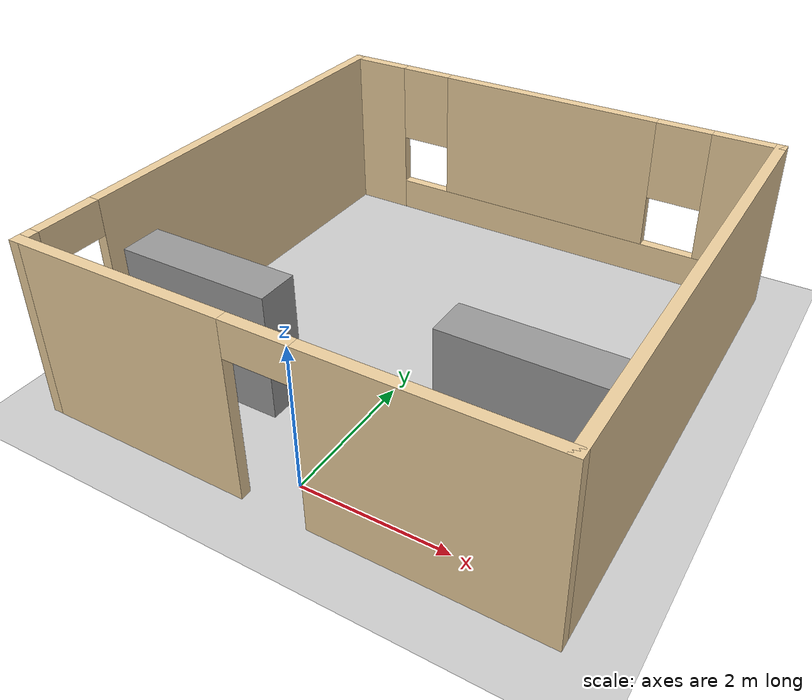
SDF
<sdf version="1.4">
 <world name="labme_world">
  <include><uri>model://ground_plane</uri></include>
  <include><uri>model://sun</uri></include>
  <include><uri>model://labmeLayout</uri><name>walls</name></include>
  <model name="wardrobe_1">
   <pose>-2.1 1.1 0.89 0 0 0</pose>
   <link name="wardrobe">
    <visual name="wardrobe_1_Visual">
     <geometry><box><size>2.2 0.59 1.8</size></box></geometry>
     <material>
      <script><uri>file://media/materials/scripts/gazebo.material</uri><name>Gazebo/Grey</name></script>
     </material>
    </visual>
    <collision name="wardrobe_1_Collision"><geometry><box><size>2.2 0.59 1.8</size></box></geometry></collision>
   </link>
  </model>
  <model name="wardrobe_2">
   <pose>2.1 1.6 0.89 0 0 0</pose>
   <link name="wardrobe2">
    <visual name="wardrobe_2_Visual">
     <geometry><box><size>2.2 0.59 1.8</size></box></geometry>
     <material>
      <script><uri>file://media/materials/scripts/gazebo.material</uri><name>Gazebo/Grey</name></script>
     </material>
    </visual>
    <collision name="wardrobe_2_Collision"><geometry><box><size>2.2 0.59 1.8</size></box></geometry></collision>
   </link>
  </model>
  <scene><grid>1</grid><origin_visual>0</origin_visual></scene>
 </world>
</sdf>

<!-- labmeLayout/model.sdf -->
<sdf version='1.6'>
  <model name='Untitled'>
    <pose frame=''>0 3.0 0 0 0 0</pose>
    <link name='Wall_4'>
      <pose frame=''>-3.425 -0 0 0 -0 1.5708</pose>
      <visual name='Wall_4_Visual_0'>
        <pose frame=''>-3.35343 0 1.25 0 -0 0</pose>
        <geometry>
          <box>
            <size>0.293141 0.15 2.5</size>
          </box>
        </geometry>
        <material>
          <script>
            <uri>file://media/materials/scripts/gazebo.material</uri>
            <name>Gazebo/Grey</name>
          </script>
          <ambient>0.921569 0.807843 0.615686 1</ambient>
        </material>
        <meta>
          <layer>0</layer>
        </meta>
      </visual>
      <collision name='Wall_4_Collision_0'>
        <geometry>
          <box>
            <size>0.293141 0.15 2.5</size>
          </box>
        </geometry>
        <pose frame=''>-3.35343 0 1.25 0 -0 0</pose>
      </collision>
      <visual name='Wall_4_Visual_1'>
        <pose frame=''>0.596571 0 1.25 0 -0 0</pose>
        <geometry>
          <box>
            <size>5.80686 0.15 2.5</size>
          </box>
        </geometry>
        <material>
          <script>
            <uri>file://media/materials/scripts/gazebo.material</uri>
            <name>Gazebo/Grey</name>
          </script>
          <ambient>0.921569 0.807843 0.615686 1</ambient>
        </material>
        <meta>
          <layer>0</layer>
        </meta>
      </visual>
      <collision name='Wall_4_Collision_1'>
        <geometry>
          <box>
            <size>5.80686 0.15 2.5</size>
          </box>
        </geometry>
        <pose frame=''>0.596571 0 1.25 0 -0 0</pose>
      </collision>
      <visual name='Wall_4_Visual_2'>
        <pose frame=''>-2.75686 0 2.25 0 -0 0</pose>
        <geometry>
          <box>
            <size>0.9 0.15 0.5</size>
          </box>
        </geometry>
        <material>
          <script>
            <uri>file://media/materials/scripts/gazebo.material</uri>
            <name>Gazebo/Grey</name>
          </script>
          <ambient>0.921569 0.807843 0.615686 1</ambient>
        </material>
        <meta>
          <layer>0</layer>
        </meta>
      </visual>
      <collision name='Wall_4_Collision_2'>
        <geometry>
          <box>
            <size>0.9 0.15 0.5</size>
          </box>
        </geometry>
        <pose frame=''>-2.75686 0 2.25 0 -0 0</pose>
      </collision>
    </link>
    <link name='Wall_6'>
      <pose frame=''>0 3.425 0 0 -0 0</pose>
      <visual name='Wall_6_Visual_0'>
        <pose frame=''>-3.00001 0 1.25 0 -0 0</pose>
        <geometry>
          <box>
            <size>0.999987 0.15 2.5</size>
          </box>
        </geometry>
        <material>
          <script>
            <uri>file://media/materials/scripts/gazebo.material</uri>
            <name>Gazebo/Grey</name>
          </script>
          <ambient>0.921569 0.807843 0.615686 1</ambient>
        </material>
        <meta>
          <layer>0</layer>
        </meta>
      </visual>
      <collision name='Wall_6_Collision_0'>
        <geometry>
          <box>
            <size>0.999987 0.15 2.5</size>
          </box>
        </geometry>
        <pose frame=''>-3.00001 0 1.25 0 -0 0</pose>
      </collision>
      <visual name='Wall_6_Visual_1'>
        <pose frame=''>0.499993 0 0.25 0 -0 0</pose>
        <geometry>
          <box>
            <size>6.00001 0.15 0.5</size>
          </box>
        </geometry>
        <material>
          <script>
            <uri>file://media/materials/scripts/gazebo.material</uri>
            <name>Gazebo/Grey</name>
          </script>
          <ambient>0.921569 0.807843 0.615686 1</ambient>
        </material>
        <meta>
          <layer>0</layer>
        </meta>
      </visual>
      <collision name='Wall_6_Collision_1'>
        <geometry>
          <box>
            <size>6.00001 0.15 0.5</size>
          </box>
        </geometry>
        <pose frame=''>0.499993 0 0.25 0 -0 0</pose>
      </collision>
      <visual name='Wall_6_Visual_2'>
        <pose frame=''>-1.3e-05 0 1.5 0 -0 0</pose>
        <geometry>
          <box>
            <size>3.4 0.15 2</size>
          </box>
        </geometry>
        <material>
          <script>
            <uri>file://media/materials/scripts/gazebo.material</uri>
            <name>Gazebo/Grey</name>
          </script>
          <ambient>0.921569 0.807843 0.615686 1</ambient>
        </material>
        <meta>
          <layer>0</layer>
        </meta>
      </visual>
      <collision name='Wall_6_Collision_2'>
        <geometry>
          <box>
            <size>3.4 0.15 2</size>
          </box>
        </geometry>
        <pose frame=''>-1.3e-05 0 1.5 0 -0 0</pose>
      </collision>
      <visual name='Wall_6_Visual_3'>
        <pose frame=''>2.99999 0 1.5 0 -0 0</pose>
        <geometry>
          <box>
            <size>1.00001 0.15 2</size>
          </box>
        </geometry>
        <material>
          <script>
            <uri>file://media/materials/scripts/gazebo.material</uri>
            <name>Gazebo/Grey</name>
          </script>
          <ambient>0.921569 0.807843 0.615686 1</ambient>
        </material>
        <meta>
          <layer>0</layer>
        </meta>
      </visual>
      <collision name='Wall_6_Collision_3'>
        <geometry>
          <box>
            <size>1.00001 0.15 2</size>
          </box>
        </geometry>
        <pose frame=''>2.99999 0 1.5 0 -0 0</pose>
      </collision>
      <visual name='Wall_6_Visual_4'>
        <pose frame=''>-2.10001 0 1.9 0 -0 0</pose>
        <geometry>
          <box>
            <size>0.8 0.15 1.2</size>
          </box>
        </geometry>
        <material>
          <script>
            <uri>file://media/materials/scripts/gazebo.material</uri>
            <name>Gazebo/Grey</name>
          </script>
          <ambient>0.921569 0.807843 0.615686 1</ambient>
        </material>
        <meta>
          <layer>0</layer>
        </meta>
      </visual>
      <collision name='Wall_6_Collision_4'>
        <geometry>
          <box>
            <size>0.8 0.15 1.2</size>
          </box>
        </geometry>
        <pose frame=''>-2.10001 0 1.9 0 -0 0</pose>
      </collision>
      <visual name='Wall_6_Visual_5'>
        <pose frame=''>2.09999 0 1.9 0 -0 0</pose>
        <geometry>
          <box>
            <size>0.8 0.15 1.2</size>
          </box>
        </geometry>
        <material>
          <script>
            <uri>file://media/materials/scripts/gazebo.material</uri>
            <name>Gazebo/Grey</name>
          </script>
          <ambient>0.921569 0.807843 0.615686 1</ambient>
        </material>
        <meta>
          <layer>0</layer>
        </meta>
      </visual>
      <collision name='Wall_6_Collision_5'>
        <geometry>
          <box>
            <size>0.8 0.15 1.2</size>
          </box>
        </geometry>
        <pose frame=''>2.09999 0 1.9 0 -0 0</pose>
      </collision>
    </link>
    <link name='Wall_8'>
      <collision name='Wall_8_Collision'>
        <geometry>
          <box>
            <size>7 0.15 2.5</size>
          </box>
        </geometry>
        <pose frame=''>0 0 1.25 0 -0 0</pose>
      </collision>
      <visual name='Wall_8_Visual'>
        <pose frame=''>0 0 1.25 0 -0 0</pose>
        <geometry>
          <box>
            <size>7 0.15 2.5</size>
          </box>
        </geometry>
        <material>
          <script>
            <uri>file://media/materials/scripts/gazebo.material</uri>
            <name>Gazebo/Grey</name>
          </script>
          <ambient>0.921569 0.807843 0.615686 1</ambient>
        </material>
        <meta>
          <layer>0</layer>
        </meta>
      </visual>
      <pose frame=''>3.425 -0 0 0 -0 -1.5708</pose>
    </link>
    <link name='Wall_9'>
      <pose frame=''>0 -3.425 0 0 -0 3.14159</pose>
      <visual name='Wall_9_Visual_0'>
        <pose frame=''>-1.97759 0 1.25 0 -0 0</pose>
        <geometry>
          <box>
            <size>3.04481 0.15 2.5</size>
          </box>
        </geometry>
        <material>
          <script>
            <uri>file://media/materials/scripts/gazebo.material</uri>
            <name>Gazebo/Grey</name>
          </script>
          <ambient>0.921569 0.807843 0.615686 1</ambient>
        </material>
        <meta>
          <layer>0</layer>
        </meta>
      </visual>
      <collision name='Wall_9_Collision_0'>
        <geometry>
          <box>
            <size>3.04481 0.15 2.5</size>
          </box>
        </geometry>
        <pose frame=''>-1.97759 0 1.25 0 -0 0</pose>
      </collision>
      <visual name='Wall_9_Visual_1'>
        <pose frame=''>1.97241 0 1.25 0 -0 0</pose>
        <geometry>
          <box>
            <size>3.05519 0.15 2.5</size>
          </box>
        </geometry>
        <material>
          <script>
            <uri>file://media/materials/scripts/gazebo.material</uri>
            <name>Gazebo/Grey</name>
          </script>
          <ambient>0.921569 0.807843 0.615686 1</ambient>
        </material>
        <meta>
          <layer>0</layer>
        </meta>
      </visual>
      <collision name='Wall_9_Collision_1'>
        <geometry>
          <box>
            <size>3.05519 0.15 2.5</size>
          </box>
        </geometry>
        <pose frame=''>1.97241 0 1.25 0 -0 0</pose>
      </collision>
      <visual name='Wall_9_Visual_2'>
        <pose frame=''>-0.005187 0 2.25 0 -0 0</pose>
        <geometry>
          <box>
            <size>0.9 0.15 0.5</size>
          </box>
        </geometry>
        <material>
          <script>
            <uri>file://media/materials/scripts/gazebo.material</uri>
            <name>Gazebo/Grey</name>
          </script>
          <ambient>0.921569 0.807843 0.615686 1</ambient>
        </material>
        <meta>
          <layer>0</layer>
        </meta>
      </visual>
      <collision name='Wall_9_Collision_2'>
        <geometry>
          <box>
            <size>0.9 0.15 0.5</size>
          </box>
        </geometry>
        <pose frame=''>-0.005187 0 2.25 0 -0 0</pose>
      </collision>
    </link>
    <static>1</static>
  </model>
</sdf>
